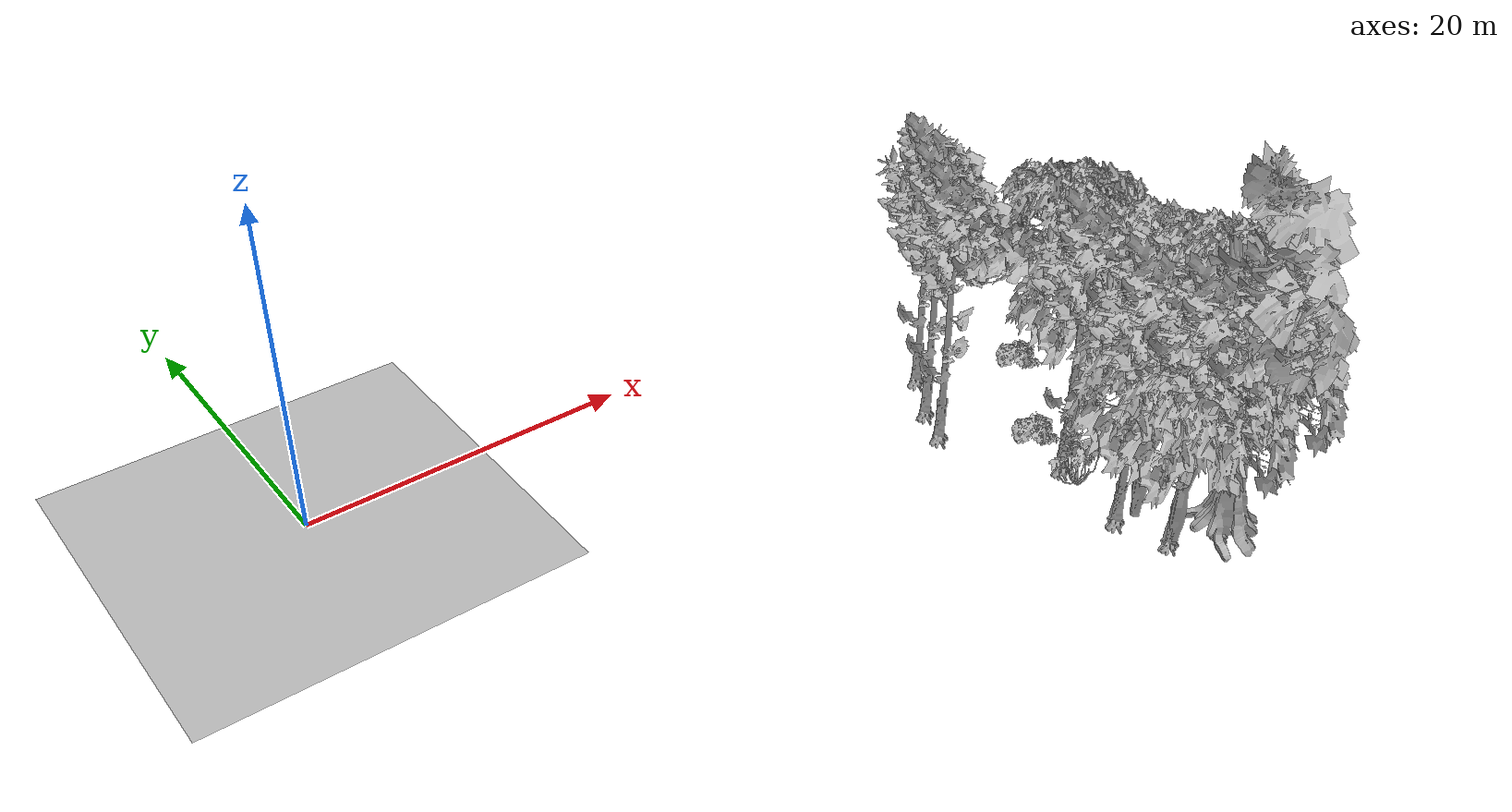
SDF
<sdf version="1.7">
 <world name="default">
  <model name="ground_plane">
   <static>1</static>
   <link name="link">
    <collision name="collision">
     <geometry><plane><normal>0 0 1</normal><size>100 100</size></plane></geometry>
     <surface><contact><ode><min_depth>0.01</min_depth><max_vel>0</max_vel></ode></contact></surface>
    </collision>
    <visual name="grass">
     <cast_shadows>0</cast_shadows>
     <geometry>
      <mesh>
       <scale>0.41000000000000003 0.41000000000000003 0.1</scale>
       <uri>file://grass_plane/meshes/grass_plane.dae</uri>
      </mesh>
     </geometry>
    </visual>
   </link>
  </model>
  <model name="Tree 1">
   <static>1</static>
   <pose>48.033321169185385 -20.172110421014434 0 1.57079 -0 0</pose>
   <link name="link">
    <collision name="collision">
     <geometry><mesh><scale>5 5 5</scale><uri>model://tree_2/meshes/tree_2.obj</uri></mesh></geometry>
    </collision>
    <visual name="visual">
     <geometry><mesh><scale>5 5 5</scale><uri>model://tree_2/meshes/tree_2.obj</uri></mesh></geometry>
    </visual>
   </link>
  </model>
  <model name="Tree 6">
   <static>1</static>
   <pose>36.65518132205763 -21.107911213101392 0 1.57079 -0 0</pose>
   <link name="link">
    <collision name="collision">
     <geometry><mesh><scale>5 5 5</scale><uri>model://tree_9/meshes/tree_9.obj</uri></mesh></geometry>
    </collision>
    <visual name="visual">
     <geometry><mesh><scale>5 5 5</scale><uri>model://tree_9/meshes/tree_9.obj</uri></mesh></geometry>
    </visual>
   </link>
  </model>
  <model name="Tree 11">
   <static>1</static>
   <pose>40.675569838467524 -29.791562081589042 0 1.57079 -0 0</pose>
   <link name="link">
    <collision name="collision">
     <geometry><mesh><scale>5 5 5</scale><uri>model://tree_9/meshes/tree_9.obj</uri></mesh></geometry>
    </collision>
    <visual name="visual">
     <geometry><mesh><scale>5 5 5</scale><uri>model://tree_9/meshes/tree_9.obj</uri></mesh></geometry>
    </visual>
   </link>
  </model>
  <model name="Tree 21">
   <static>1</static>
   <pose>46.18077979845019 -16.865379844860307 0 1.57079 -0 0</pose>
   <link name="link">
    <collision name="collision">
     <geometry><mesh><scale>5 5 5</scale><uri>model://tree_2/meshes/tree_2.obj</uri></mesh></geometry>
    </collision>
    <visual name="visual">
     <geometry><mesh><scale>5 5 5</scale><uri>model://tree_2/meshes/tree_2.obj</uri></mesh></geometry>
    </visual>
   </link>
  </model>
  <model name="Tree 62">
   <static>1</static>
   <pose>46.65612200009754 -11.479614325144759 0 1.57079 -0 0</pose>
   <link name="link">
    <collision name="collision">
     <geometry><mesh><scale>5 5 5</scale><uri>model://tree_2/meshes/tree_2.obj</uri></mesh></geometry>
    </collision>
    <visual name="visual">
     <geometry><mesh><scale>5 5 5</scale><uri>model://tree_2/meshes/tree_2.obj</uri></mesh></geometry>
    </visual>
   </link>
  </model>
  <model name="Tree 94">
   <static>1</static>
   <pose>46.75430765645173 -11.448935542650752 0 1.57079 -0 0</pose>
   <link name="link">
    <collision name="collision">
     <geometry><mesh><scale>5 5 5</scale><uri>model://tree_2/meshes/tree_2.obj</uri></mesh></geometry>
    </collision>
    <visual name="visual">
     <geometry><mesh><scale>5 5 5</scale><uri>model://tree_2/meshes/tree_2.obj</uri></mesh></geometry>
    </visual>
   </link>
  </model>
  <model name="Tree 102">
   <static>1</static>
   <pose>35.64490486095498 -26.07961763947482 0 1.57079 -0 0</pose>
   <link name="link">
    <collision name="collision">
     <geometry><mesh><scale>5 5 5</scale><uri>model://tree_9/meshes/tree_9.obj</uri></mesh></geometry>
    </collision>
    <visual name="visual">
     <geometry><mesh><scale>5 5 5</scale><uri>model://tree_9/meshes/tree_9.obj</uri></mesh></geometry>
    </visual>
   </link>
  </model>
  <model name="Tree 115">
   <static>1</static>
   <pose>39.80745481090513 -29.945849232210577 0 1.57079 -0 0</pose>
   <link name="link">
    <collision name="collision">
     <geometry><mesh><scale>5 5 5</scale><uri>model://tree_4/meshes/tree_4.obj</uri></mesh></geometry>
    </collision>
    <visual name="visual">
     <geometry><mesh><scale>5 5 5</scale><uri>model://tree_4/meshes/tree_4.obj</uri></mesh></geometry>
    </visual>
   </link>
  </model>
  <model name="Tree 120">
   <static>1</static>
   <pose>36.56373873033748 -29.062276941621278 0 1.57079 -0 0</pose>
   <link name="link">
    <collision name="collision">
     <geometry><mesh><scale>5 5 5</scale><uri>model://tree_9/meshes/tree_9.obj</uri></mesh></geometry>
    </collision>
    <visual name="visual">
     <geometry><mesh><scale>5 5 5</scale><uri>model://tree_9/meshes/tree_9.obj</uri></mesh></geometry>
    </visual>
   </link>
  </model>
  <model name="Tree 126">
   <static>1</static>
   <pose>35.97765056046059 -9.754690150531175 0 1.57079 -0 0</pose>
   <link name="link">
    <collision name="collision">
     <geometry><mesh><scale>5 5 5</scale><uri>model://tree_9/meshes/tree_9.obj</uri></mesh></geometry>
    </collision>
    <visual name="visual">
     <geometry><mesh><scale>5 5 5</scale><uri>model://tree_9/meshes/tree_9.obj</uri></mesh></geometry>
    </visual>
   </link>
  </model>
  <model name="Tree 205">
   <static>1</static>
   <pose>36.66312062128924 -26.43334030486445 0 1.57079 -0 0</pose>
   <link name="link">
    <collision name="collision">
     <geometry><mesh><scale>5 5 5</scale><uri>model://tree_2/meshes/tree_2.obj</uri></mesh></geometry>
    </collision>
    <visual name="visual">
     <geometry><mesh><scale>5 5 5</scale><uri>model://tree_2/meshes/tree_2.obj</uri></mesh></geometry>
    </visual>
   </link>
  </model>
  <model name="Tree 207">
   <static>1</static>
   <pose>33.151778285994126 -14.746281055507893 0 1.57079 -0 0</pose>
   <link name="link">
    <collision name="collision">
     <geometry><mesh><scale>5 5 5</scale><uri>model://tree_9/meshes/tree_9.obj</uri></mesh></geometry>
    </collision>
    <visual name="visual">
     <geometry><mesh><scale>5 5 5</scale><uri>model://tree_9/meshes/tree_9.obj</uri></mesh></geometry>
    </visual>
   </link>
  </model>
  <model name="Tree 272">
   <static>1</static>
   <pose>36.46030297279357 -29.23382155306714 0 1.57079 -0 0</pose>
   <link name="link">
    <collision name="collision">
     <geometry><mesh><scale>5 5 5</scale><uri>model://tree_2/meshes/tree_2.obj</uri></mesh></geometry>
    </collision>
    <visual name="visual">
     <geometry><mesh><scale>5 5 5</scale><uri>model://tree_2/meshes/tree_2.obj</uri></mesh></geometry>
    </visual>
   </link>
  </model>
  <model name="Tree 330">
   <static>1</static>
   <pose>34.11174073707343 -12.562991950290922 0 1.57079 -0 0</pose>
   <link name="link">
    <collision name="collision">
     <geometry><mesh><scale>5 5 5</scale><uri>model://tree_9/meshes/tree_9.obj</uri></mesh></geometry>
    </collision>
    <visual name="visual">
     <geometry><mesh><scale>5 5 5</scale><uri>model://tree_9/meshes/tree_9.obj</uri></mesh></geometry>
    </visual>
   </link>
  </model>
  <model name="Tree 407">
   <static>1</static>
   <pose>41.226409160208036 -17.927557561476284 0 1.57079 -0 0</pose>
   <link name="link">
    <collision name="collision">
     <geometry><mesh><scale>5 5 5</scale><uri>model://tree_2/meshes/tree_2.obj</uri></mesh></geometry>
    </collision>
    <visual name="visual">
     <geometry><mesh><scale>5 5 5</scale><uri>model://tree_2/meshes/tree_2.obj</uri></mesh></geometry>
    </visual>
   </link>
  </model>
  <model name="Tree 417">
   <static>1</static>
   <pose>41.47192838141562 -29.20267192982944 0 1.57079 -0 0</pose>
   <link name="link">
    <collision name="collision">
     <geometry><mesh><scale>5 5 5</scale><uri>model://tree_9/meshes/tree_9.obj</uri></mesh></geometry>
    </collision>
    <visual name="visual">
     <geometry><mesh><scale>5 5 5</scale><uri>model://tree_9/meshes/tree_9.obj</uri></mesh></geometry>
    </visual>
   </link>
  </model>
  <model name="Tree 430">
   <static>1</static>
   <pose>48.48108462780786 -21.979362937708057 0 1.57079 -0 0</pose>
   <link name="link">
    <collision name="collision">
     <geometry><mesh><scale>5 5 5</scale><uri>model://tree_2/meshes/tree_2.obj</uri></mesh></geometry>
    </collision>
    <visual name="visual">
     <geometry><mesh><scale>5 5 5</scale><uri>model://tree_2/meshes/tree_2.obj</uri></mesh></geometry>
    </visual>
   </link>
  </model>
  <model name="Tree 460">
   <static>1</static>
   <pose>41.3768813083059 -28.638467625534314 0 1.57079 -0 0</pose>
   <link name="link">
    <collision name="collision">
     <geometry><mesh><scale>5 5 5</scale><uri>model://tree_2/meshes/tree_2.obj</uri></mesh></geometry>
    </collision>
    <visual name="visual">
     <geometry><mesh><scale>5 5 5</scale><uri>model://tree_2/meshes/tree_2.obj</uri></mesh></geometry>
    </visual>
   </link>
  </model>
  <model name="Tree 486">
   <static>1</static>
   <pose>39.59242679669762 -30.09858509249643 0 1.57079 -0 0</pose>
   <link name="link">
    <collision name="collision">
     <geometry><mesh><scale>5 5 5</scale><uri>model://tree_9/meshes/tree_9.obj</uri></mesh></geometry>
    </collision>
    <visual name="visual">
     <geometry><mesh><scale>5 5 5</scale><uri>model://tree_9/meshes/tree_9.obj</uri></mesh></geometry>
    </visual>
   </link>
  </model>
  <model name="Bush 26">
   <static>1</static>
   <pose>42.29119117197679 -12.054581835161258 0 1.57079 -0 0</pose>
   <link name="link">
    <collision name="collision">
     <geometry><mesh><scale>2 2 2</scale><uri>model://bush_2/meshes/bush_2.obj</uri></mesh></geometry>
    </collision>
    <visual name="visual">
     <geometry><mesh><scale>5 5 5</scale><uri>model://bush_2/meshes/bush_2.obj</uri></mesh></geometry>
    </visual>
   </link>
  </model>
  <model name="Bush 80">
   <static>1</static>
   <pose>36.240735119021494 -22.61690623103435 0 1.57079 -0 0</pose>
   <link name="link">
    <collision name="collision">
     <geometry><mesh><scale>2 2 2</scale><uri>model://bush_4/meshes/bush_4.obj</uri></mesh></geometry>
    </collision>
    <visual name="visual">
     <geometry><mesh><scale>5 5 5</scale><uri>model://bush_4/meshes/bush_4.obj</uri></mesh></geometry>
    </visual>
   </link>
  </model>
  <model name="Bush 87">
   <static>1</static>
   <pose>37.51783973609794 -18.115377002278354 0 1.57079 -0 0</pose>
   <link name="link">
    <collision name="collision">
     <geometry><mesh><scale>2 2 2</scale><uri>model://bush_2/meshes/bush_2.obj</uri></mesh></geometry>
    </collision>
    <visual name="visual">
     <geometry><mesh><scale>5 5 5</scale><uri>model://bush_2/meshes/bush_2.obj</uri></mesh></geometry>
    </visual>
   </link>
  </model>
  <model name="Bush 93">
   <static>1</static>
   <pose>44.90677221231752 -17.675751038432665 0 1.57079 -0 0</pose>
   <link name="link">
    <collision name="collision">
     <geometry><mesh><scale>2 2 2</scale><uri>model://bush_2/meshes/bush_2.obj</uri></mesh></geometry>
    </collision>
    <visual name="visual">
     <geometry><mesh><scale>5 5 5</scale><uri>model://bush_2/meshes/bush_2.obj</uri></mesh></geometry>
    </visual>
   </link>
  </model>
 </world>
</sdf>
